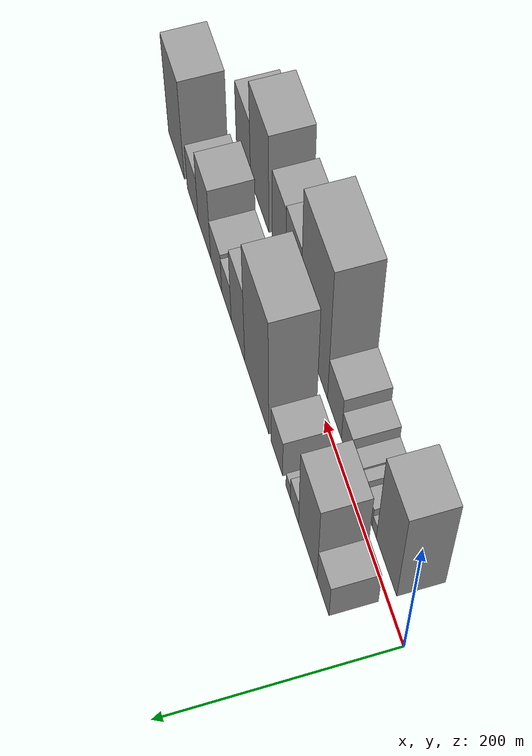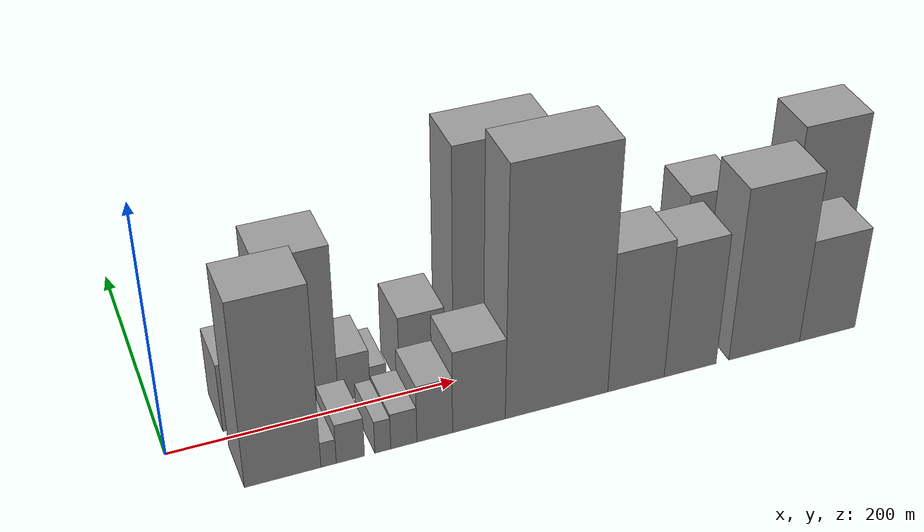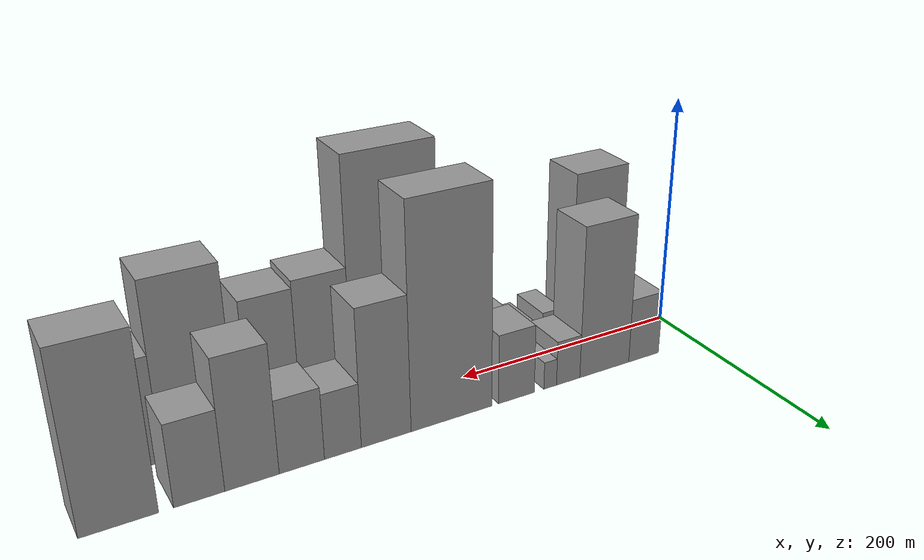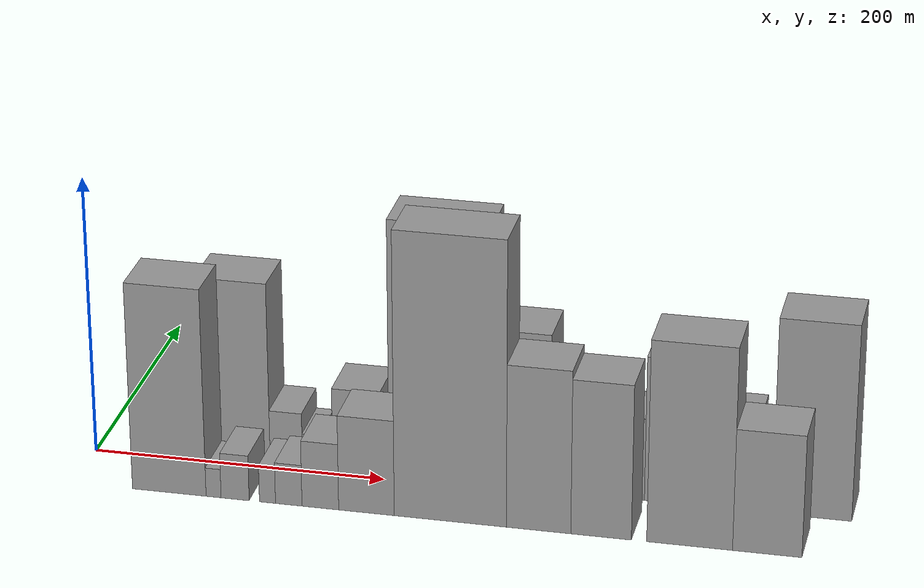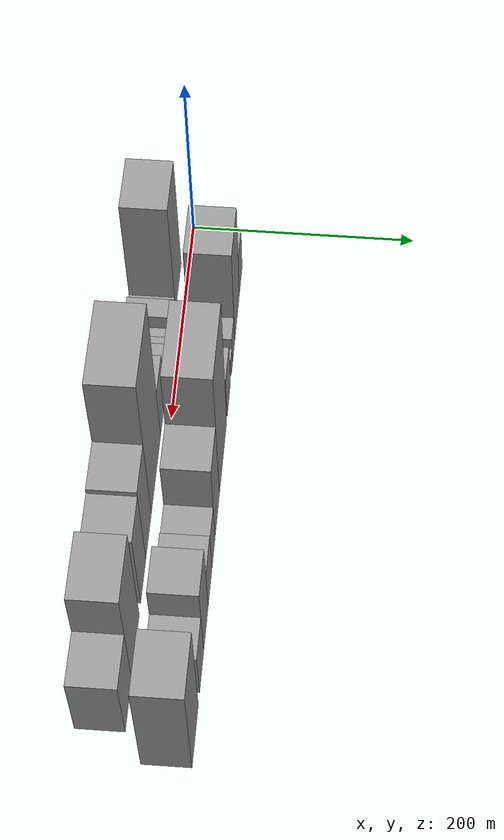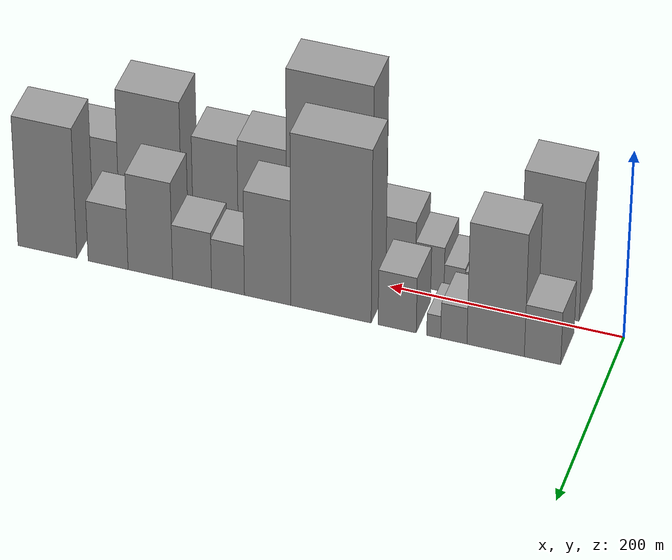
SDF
<sdf version="1.6">
 <world name="default">
  <scene>
   <sky><clouds><speed>12</speed></clouds></sky>
   <ambient>0.4 0.4 0.4 1</ambient>
   <background>0.7 0.7 0.7 1</background>
   <shadows>1</shadows>
  </scene>
  <gravity>0 0 -9.8066</gravity>
  <magnetic_field>6e-06 2.3e-05 -4.2e-05</magnetic_field>
  <physics default="0" name="default_physics" type="ode">
   <ode>
    <solver>
     <type>quick</type>
     <iters>10</iters>
     <sor>1.0</sor>
     <use_dynamic_moi_rescaling>0</use_dynamic_moi_rescaling>
    </solver>
    <constraints>
     <cfm>0</cfm>
     <erp>0.2</erp>
     <contact_max_correcting_vel>100</contact_max_correcting_vel>
     <contact_surface_layer>0.001</contact_surface_layer>
    </constraints>
   </ode>
   <max_step_size>0.004</max_step_size>
   <real_time_factor>1</real_time_factor>
   <real_time_update_rate>250</real_time_update_rate>
  </physics>
  <light name="sun" type="directional">
   <pose>0 0 10 0 0 0</pose>
   <diffuse>0.8 0.8 0.8 1</diffuse>
   <specular>0.2 0.2 0.2 1</specular>
   <attenuation>
    <range>1000</range>
    <constant>0.9</constant>
    <linear>0.01</linear>
    <quadratic>0.001</quadratic>
   </attenuation>
   <direction>-0.5 0.1 -0.9</direction>
  </light>
  <model name="building_1">
   <static>1</static>
   <pose>55.3945 27.5000 0 0.000000 0.000000 1.570796</pose>
   <link name="link">
    <pose>0 0 28.50 0 0 0</pose>
    <collision name="collision"><geometry><box><size>40.0000 30.7889 57.0000</size></box></geometry></collision>
    <visual name="visual">
     <cast_shadows>0</cast_shadows>
     <geometry><box><size>40.0000 30.7889 57.0000</size></box></geometry>
     <material>
      <script>
       <uri>model://grey_wall/materials/scripts</uri>
       <uri>model://grey_wall/materials/textures</uri>
       <name>vrc/grey_wall</name>
      </script>
     </material>
    </visual>
   </link>
  </model>
  <model name="building_2">
   <static>1</static>
   <pose>95.1698 27.5000 0 0.000000 0.000000 1.570796</pose>
   <link name="link">
    <pose>0 0 66.00 0 0 0</pose>
    <collision name="collision"><geometry><box><size>40.0000 48.7617 132.0000</size></box></geometry></collision>
    <visual name="visual">
     <cast_shadows>0</cast_shadows>
     <geometry><box><size>40.0000 48.7617 132.0000</size></box></geometry>
     <material>
      <script>
       <uri>model://grey_wall/materials/scripts</uri>
       <uri>model://grey_wall/materials/textures</uri>
       <name>vrc/grey_wall</name>
      </script>
     </material>
    </visual>
   </link>
  </model>
  <model name="building_3">
   <static>1</static>
   <pose>130.7262 27.5000 0 0.000000 0.000000 1.570796</pose>
   <link name="link">
    <pose>0 0 19.50 0 0 0</pose>
    <collision name="collision"><geometry><box><size>40.0000 22.3511 39.0000</size></box></geometry></collision>
    <visual name="visual">
     <cast_shadows>0</cast_shadows>
     <geometry><box><size>40.0000 22.3511 39.0000</size></box></geometry>
     <material>
      <script>
       <uri>model://grey_wall/materials/scripts</uri>
       <uri>model://grey_wall/materials/textures</uri>
       <name>vrc/grey_wall</name>
      </script>
     </material>
    </visual>
   </link>
  </model>
  <model name="building_4">
   <static>1</static>
   <pose>147.8711 27.5000 0 0.000000 0.000000 1.570796</pose>
   <link name="link">
    <pose>0 0 12.00 0 0 0</pose>
    <collision name="collision"><geometry><box><size>40.0000 11.9388 24.0000</size></box></geometry></collision>
    <visual name="visual">
     <cast_shadows>0</cast_shadows>
     <geometry><box><size>40.0000 11.9388 24.0000</size></box></geometry>
     <material>
      <script>
       <uri>model://grey_wall/materials/scripts</uri>
       <uri>model://grey_wall/materials/textures</uri>
       <name>vrc/grey_wall</name>
      </script>
     </material>
    </visual>
   </link>
  </model>
  <model name="building_5">
   <static>1</static>
   <pose>179.1904 27.5000 0 0.000000 0.000000 1.570796</pose>
   <link name="link">
    <pose>0 0 30.00 0 0 0</pose>
    <collision name="collision"><geometry><box><size>40.0000 32.6997 60.0000</size></box></geometry></collision>
    <visual name="visual">
     <cast_shadows>0</cast_shadows>
     <geometry><box><size>40.0000 32.6997 60.0000</size></box></geometry>
     <material>
      <script>
       <uri>model://grey_wall/materials/scripts</uri>
       <uri>model://grey_wall/materials/textures</uri>
       <name>vrc/grey_wall</name>
      </script>
     </material>
    </visual>
   </link>
  </model>
  <model name="building_6">
   <static>1</static>
   <pose>236.2480 27.5000 0 0.000000 0.000000 1.570796</pose>
   <link name="link">
    <pose>0 0 93.00 0 0 0</pose>
    <collision name="collision"><geometry><box><size>40.0000 69.4156 186.0000</size></box></geometry></collision>
    <visual name="visual">
     <cast_shadows>0</cast_shadows>
     <geometry><box><size>40.0000 69.4156 186.0000</size></box></geometry>
     <material>
      <script>
       <uri>model://grey_wall/materials/scripts</uri>
       <uri>model://grey_wall/materials/textures</uri>
       <name>vrc/grey_wall</name>
      </script>
     </material>
    </visual>
   </link>
  </model>
  <model name="building_7">
   <static>1</static>
   <pose>291.1091 27.5000 0 0.000000 0.000000 1.570796</pose>
   <link name="link">
    <pose>0 0 57.00 0 0 0</pose>
    <collision name="collision"><geometry><box><size>40.0000 40.3065 114.0000</size></box></geometry></collision>
    <visual name="visual">
     <cast_shadows>0</cast_shadows>
     <geometry><box><size>40.0000 40.3065 114.0000</size></box></geometry>
     <material>
      <script>
       <uri>model://grey_wall/materials/scripts</uri>
       <uri>model://grey_wall/materials/textures</uri>
       <name>vrc/grey_wall</name>
      </script>
     </material>
    </visual>
   </link>
  </model>
  <model name="building_8">
   <static>1</static>
   <pose>325.6375 27.5000 0 0.000000 0.000000 1.570796</pose>
   <link name="link">
    <pose>0 0 27.00 0 0 0</pose>
    <collision name="collision"><geometry><box><size>40.0000 28.7502 54.0000</size></box></geometry></collision>
    <visual name="visual">
     <cast_shadows>0</cast_shadows>
     <geometry><box><size>40.0000 28.7502 54.0000</size></box></geometry>
     <material>
      <script>
       <uri>model://grey_wall/materials/scripts</uri>
       <uri>model://grey_wall/materials/textures</uri>
       <name>vrc/grey_wall</name>
      </script>
     </material>
    </visual>
   </link>
  </model>
  <model name="building_9">
   <static>1</static>
   <pose>357.0503 27.5000 0 0.000000 0.000000 1.570796</pose>
   <link name="link">
    <pose>0 0 30.00 0 0 0</pose>
    <collision name="collision"><geometry><box><size>40.0000 34.0755 60.0000</size></box></geometry></collision>
    <visual name="visual">
     <cast_shadows>0</cast_shadows>
     <geometry><box><size>40.0000 34.0755 60.0000</size></box></geometry>
     <material>
      <script>
       <uri>model://grey_wall/materials/scripts</uri>
       <uri>model://grey_wall/materials/textures</uri>
       <name>vrc/grey_wall</name>
      </script>
     </material>
    </visual>
   </link>
  </model>
  <model name="building_10">
   <static>1</static>
   <pose>393.6979 27.5000 0 0.000000 0.000000 1.570796</pose>
   <link name="link">
    <pose>0 0 52.50 0 0 0</pose>
    <collision name="collision"><geometry><box><size>40.0000 39.2197 105.0000</size></box></geometry></collision>
    <visual name="visual">
     <cast_shadows>0</cast_shadows>
     <geometry><box><size>40.0000 39.2197 105.0000</size></box></geometry>
     <material>
      <script>
       <uri>model://grey_wall/materials/scripts</uri>
       <uri>model://grey_wall/materials/textures</uri>
       <name>vrc/grey_wall</name>
      </script>
     </material>
    </visual>
   </link>
  </model>
  <model name="building_11">
   <static>1</static>
   <pose>430.9724 27.5000 0 0.000000 0.000000 1.570796</pose>
   <link name="link">
    <pose>0 0 33.00 0 0 0</pose>
    <collision name="collision"><geometry><box><size>40.0000 35.3295 66.0000</size></box></geometry></collision>
    <visual name="visual">
     <cast_shadows>0</cast_shadows>
     <geometry><box><size>40.0000 35.3295 66.0000</size></box></geometry>
     <material>
      <script>
       <uri>model://grey_wall/materials/scripts</uri>
       <uri>model://grey_wall/materials/textures</uri>
       <name>vrc/grey_wall</name>
      </script>
     </material>
    </visual>
   </link>
  </model>
  <model name="building_12">
   <static>1</static>
   <pose>484.7715 27.5000 0 0.000000 0.000000 1.570796</pose>
   <link name="link">
    <pose>0 0 70.50 0 0 0</pose>
    <collision name="collision"><geometry><box><size>40.0000 52.2686 141.0000</size></box></geometry></collision>
    <visual name="visual">
     <cast_shadows>0</cast_shadows>
     <geometry><box><size>40.0000 52.2686 141.0000</size></box></geometry>
     <material>
      <script>
       <uri>model://grey_wall/materials/scripts</uri>
       <uri>model://grey_wall/materials/textures</uri>
       <name>vrc/grey_wall</name>
      </script>
     </material>
    </visual>
   </link>
  </model>
  <model name="building_13">
   <static>1</static>
   <pose>65.2805 -27.5000 0 0.000000 0.000000 1.570796</pose>
   <link name="link">
    <pose>0 0 75.00 0 0 0</pose>
    <collision name="collision"><geometry><box><size>40.0000 50.5610 150.0000</size></box></geometry></collision>
    <visual name="visual">
     <cast_shadows>0</cast_shadows>
     <geometry><box><size>40.0000 50.5610 150.0000</size></box></geometry>
     <material>
      <script>
       <uri>model://grey_wall/materials/scripts</uri>
       <uri>model://grey_wall/materials/textures</uri>
       <name>vrc/grey_wall</name>
      </script>
     </material>
    </visual>
   </link>
  </model>
  <model name="building_14">
   <static>1</static>
   <pose>95.6937 -27.5000 0 0.000000 0.000000 1.570796</pose>
   <link name="link">
    <pose>0 0 10.50 0 0 0</pose>
    <collision name="collision"><geometry><box><size>40.0000 10.2654 21.0000</size></box></geometry></collision>
    <visual name="visual">
     <cast_shadows>0</cast_shadows>
     <geometry><box><size>40.0000 10.2654 21.0000</size></box></geometry>
     <material>
      <script>
       <uri>model://grey_wall/materials/scripts</uri>
       <uri>model://grey_wall/materials/textures</uri>
       <name>vrc/grey_wall</name>
      </script>
     </material>
    </visual>
   </link>
  </model>
  <model name="building_15">
   <static>1</static>
   <pose>110.3955 -27.5000 0 0.000000 0.000000 1.570796</pose>
   <link name="link">
    <pose>0 0 16.50 0 0 0</pose>
    <collision name="collision"><geometry><box><size>40.0000 19.1383 33.0000</size></box></geometry></collision>
    <visual name="visual">
     <cast_shadows>0</cast_shadows>
     <geometry><box><size>40.0000 19.1383 33.0000</size></box></geometry>
     <material>
      <script>
       <uri>model://grey_wall/materials/scripts</uri>
       <uri>model://grey_wall/materials/textures</uri>
       <name>vrc/grey_wall</name>
      </script>
     </material>
    </visual>
   </link>
  </model>
  <model name="building_16">
   <static>1</static>
   <pose>132.4214 -27.5000 0 0.000000 0.000000 1.570796</pose>
   <link name="link">
    <pose>0 0 13.50 0 0 0</pose>
    <collision name="collision"><geometry><box><size>40.0000 10.9134 27.0000</size></box></geometry></collision>
    <visual name="visual">
     <cast_shadows>0</cast_shadows>
     <geometry><box><size>40.0000 10.9134 27.0000</size></box></geometry>
     <material>
      <script>
       <uri>model://grey_wall/materials/scripts</uri>
       <uri>model://grey_wall/materials/textures</uri>
       <name>vrc/grey_wall</name>
      </script>
     </material>
    </visual>
   </link>
  </model>
  <model name="building_17">
   <static>1</static>
   <pose>146.8676 -27.5000 0 0.000000 0.000000 1.570796</pose>
   <link name="link">
    <pose>0 0 15.00 0 0 0</pose>
    <collision name="collision"><geometry><box><size>40.0000 17.9789 30.0000</size></box></geometry></collision>
    <visual name="visual">
     <cast_shadows>0</cast_shadows>
     <geometry><box><size>40.0000 17.9789 30.0000</size></box></geometry>
     <material>
      <script>
       <uri>model://grey_wall/materials/scripts</uri>
       <uri>model://grey_wall/materials/textures</uri>
       <name>vrc/grey_wall</name>
      </script>
     </material>
    </visual>
   </link>
  </model>
  <model name="building_18">
   <static>1</static>
   <pose>168.2518 -27.5000 0 0.000000 0.000000 1.570796</pose>
   <link name="link">
    <pose>0 0 24.00 0 0 0</pose>
    <collision name="collision"><geometry><box><size>40.0000 24.7896 48.0000</size></box></geometry></collision>
    <visual name="visual">
     <cast_shadows>0</cast_shadows>
     <geometry><box><size>40.0000 24.7896 48.0000</size></box></geometry>
     <material>
      <script>
       <uri>model://grey_wall/materials/scripts</uri>
       <uri>model://grey_wall/materials/textures</uri>
       <name>vrc/grey_wall</name>
      </script>
     </material>
    </visual>
   </link>
  </model>
  <model name="building_19">
   <static>1</static>
   <pose>199.3343 -27.5000 0 0.000000 0.000000 1.570796</pose>
   <link name="link">
    <pose>0 0 34.50 0 0 0</pose>
    <collision name="collision"><geometry><box><size>40.0000 37.3753 69.0000</size></box></geometry></collision>
    <visual name="visual">
     <cast_shadows>0</cast_shadows>
     <geometry><box><size>40.0000 37.3753 69.0000</size></box></geometry>
     <material>
      <script>
       <uri>model://grey_wall/materials/scripts</uri>
       <uri>model://grey_wall/materials/textures</uri>
       <name>vrc/grey_wall</name>
      </script>
     </material>
    </visual>
   </link>
  </model>
  <model name="building_20">
   <static>1</static>
   <pose>255.3869 -27.5000 0 0.000000 0.000000 1.570796</pose>
   <link name="link">
    <pose>0 0 102.00 0 0 0</pose>
    <collision name="collision"><geometry><box><size>40.0000 74.7300 204.0000</size></box></geometry></collision>
    <visual name="visual">
     <cast_shadows>0</cast_shadows>
     <geometry><box><size>40.0000 74.7300 204.0000</size></box></geometry>
     <material>
      <script>
       <uri>model://grey_wall/materials/scripts</uri>
       <uri>model://grey_wall/materials/textures</uri>
       <name>vrc/grey_wall</name>
      </script>
     </material>
    </visual>
   </link>
  </model>
  <model name="building_21">
   <static>1</static>
   <pose>314.0035 -27.5000 0 0.000000 0.000000 1.570796</pose>
   <link name="link">
    <pose>0 0 58.50 0 0 0</pose>
    <collision name="collision"><geometry><box><size>40.0000 42.5032 117.0000</size></box></geometry></collision>
    <visual name="visual">
     <cast_shadows>0</cast_shadows>
     <geometry><box><size>40.0000 42.5032 117.0000</size></box></geometry>
     <material>
      <script>
       <uri>model://grey_wall/materials/scripts</uri>
       <uri>model://grey_wall/materials/textures</uri>
       <name>vrc/grey_wall</name>
      </script>
     </material>
    </visual>
   </link>
  </model>
  <model name="building_22">
   <static>1</static>
   <pose>355.1253 -27.5000 0 0.000000 0.000000 1.570796</pose>
   <link name="link">
    <pose>0 0 55.50 0 0 0</pose>
    <collision name="collision"><geometry><box><size>40.0000 39.7402 111.0000</size></box></geometry></collision>
    <visual name="visual">
     <cast_shadows>0</cast_shadows>
     <geometry><box><size>40.0000 39.7402 111.0000</size></box></geometry>
     <material>
      <script>
       <uri>model://grey_wall/materials/scripts</uri>
       <uri>model://grey_wall/materials/textures</uri>
       <name>vrc/grey_wall</name>
      </script>
     </material>
    </visual>
   </link>
  </model>
  <model name="building_23">
   <static>1</static>
   <pose>412.8878 -27.5000 0 0.000000 0.000000 1.570796</pose>
   <link name="link">
    <pose>0 0 72.00 0 0 0</pose>
    <collision name="collision"><geometry><box><size>40.0000 55.7849 144.0000</size></box></geometry></collision>
    <visual name="visual">
     <cast_shadows>0</cast_shadows>
     <geometry><box><size>40.0000 55.7849 144.0000</size></box></geometry>
     <material>
      <script>
       <uri>model://grey_wall/materials/scripts</uri>
       <uri>model://grey_wall/materials/textures</uri>
       <name>vrc/grey_wall</name>
      </script>
     </material>
    </visual>
   </link>
  </model>
  <model name="building_24">
   <static>1</static>
   <pose>463.1515 -27.5000 0 0.000000 0.000000 1.570796</pose>
   <link name="link">
    <pose>0 0 43.50 0 0 0</pose>
    <collision name="collision"><geometry><box><size>40.0000 44.7425 87.0000</size></box></geometry></collision>
    <visual name="visual">
     <cast_shadows>0</cast_shadows>
     <geometry><box><size>40.0000 44.7425 87.0000</size></box></geometry>
     <material>
      <script>
       <uri>model://grey_wall/materials/scripts</uri>
       <uri>model://grey_wall/materials/textures</uri>
       <name>vrc/grey_wall</name>
      </script>
     </material>
    </visual>
   </link>
  </model>
 </world>
</sdf>
